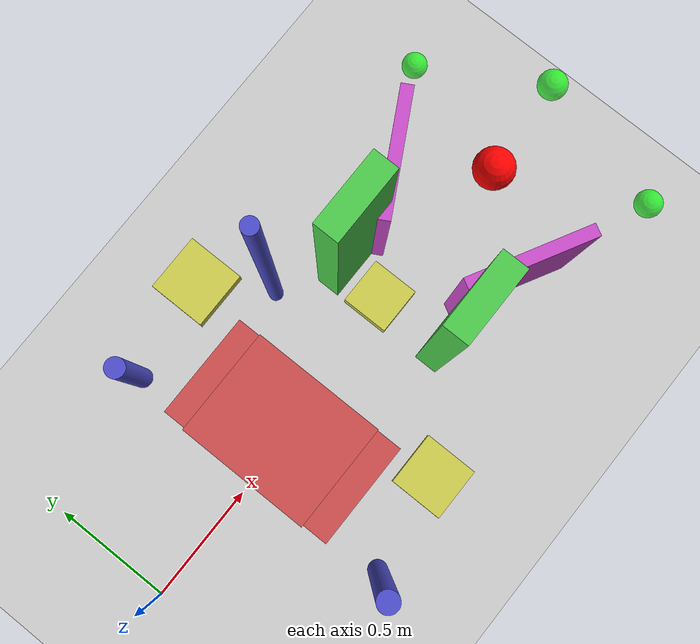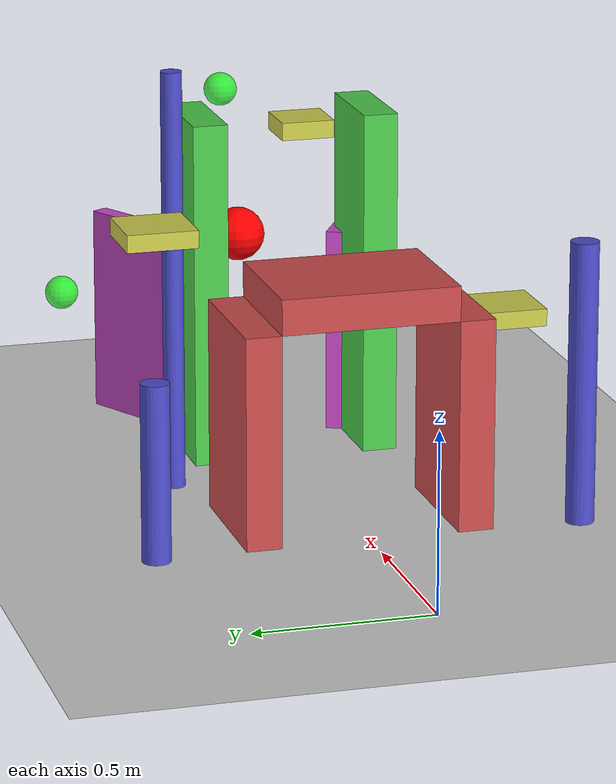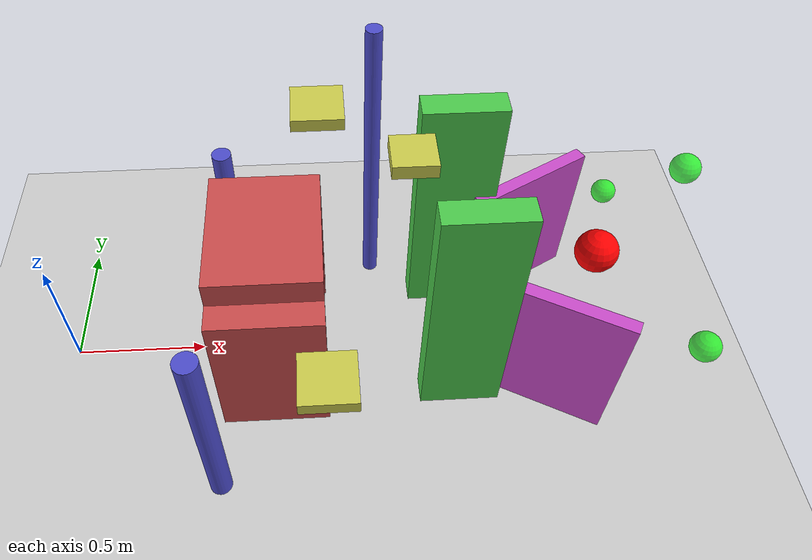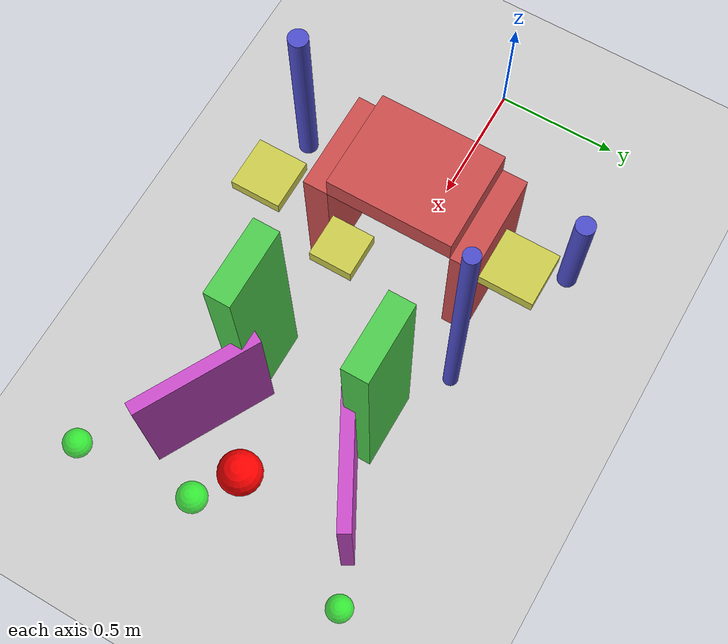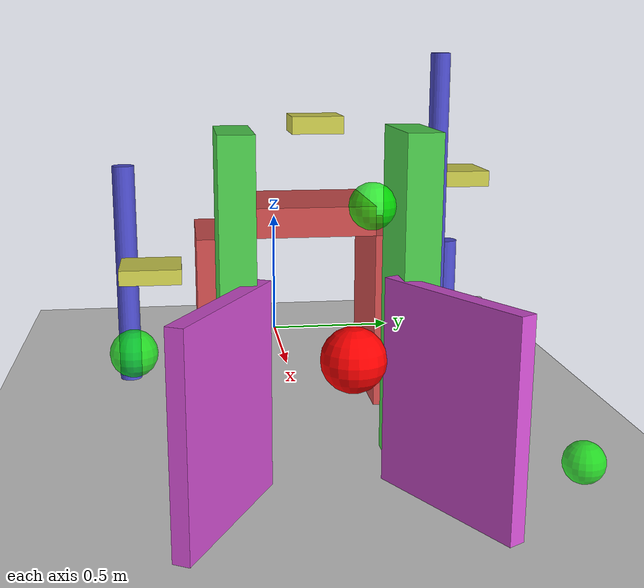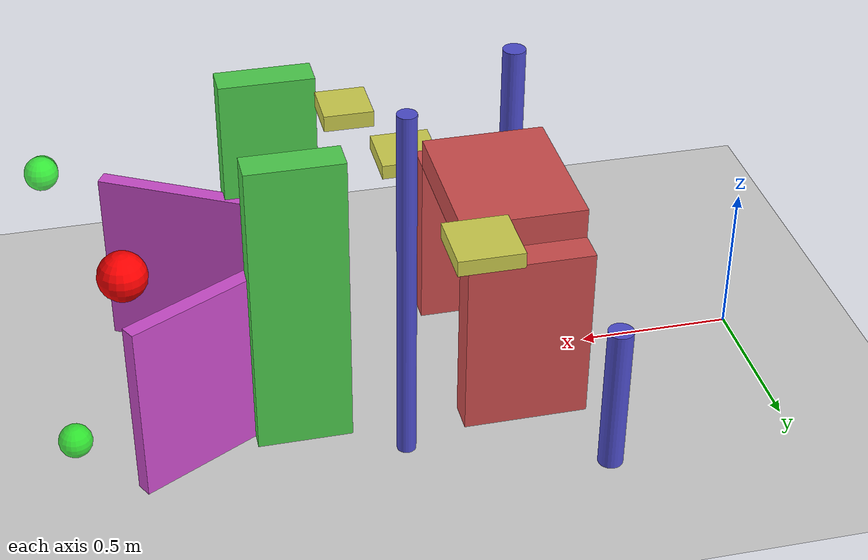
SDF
<?xml version="1.0" ?>
<sdf version="1.8">
  <world name="obstacle_course">

    <!-- Physics -->
    <physics name="1ms" type="ignored">
      <max_step_size>0.001</max_step_size>
      <real_time_factor>1.0</real_time_factor>
    </physics>

    <!-- Plugins -->
    <plugin filename="gz-sim-physics-system" name="gz::sim::systems::Physics"/>
    <plugin filename="gz-sim-user-commands-system" name="gz::sim::systems::UserCommands"/>
    <plugin filename="gz-sim-scene-broadcaster-system" name="gz::sim::systems::SceneBroadcaster"/>
    <plugin filename="gz-sim-contact-system" name="gz::sim::systems::Contact"/>

    <!-- Lighting -->
    <light type="directional" name="sun">
      <cast_shadows>true</cast_shadows>
      <pose>0 0 10 0 0 0</pose>
      <diffuse>0.8 0.8 0.8 1</diffuse>
      <specular>0.2 0.2 0.2 1</specular>
      <attenuation>
        <range>1000</range>
        <constant>0.9</constant>
        <linear>0.01</linear>
        <quadratic>0.001</quadratic>
      </attenuation>
      <direction>-0.5 0.1 -0.9</direction>
    </light>

    <!-- Ground Plane -->
    <model name="ground_plane">
      <static>true</static>
      <link name="link">
        <collision name="collision">
          <geometry>
            <plane>
              <normal>0 0 1</normal>
            </plane>
          </geometry>
        </collision>
        <visual name="visual">
          <geometry>
            <plane>
              <normal>0 0 1</normal>
              <size>100 100</size>
            </plane>
          </geometry>
          <material>
            <ambient>0.8 0.8 0.8 1</ambient>
            <diffuse>0.8 0.8 0.8 1</diffuse>
            <specular>0.8 0.8 0.8 1</specular>
          </material>
        </visual>
      </link>
    </model>

    <!-- Narrow Passage 1 - Low Height -->
    <model name="narrow_passage_low">
      <static>true</static>
      <pose>0.8 0 0 0 0 0</pose>
      <!-- Left Wall -->
      <link name="left_wall">
        <pose>0 0.3 0.3 0 0 0</pose>
        <collision name="collision">
          <geometry>
            <box>
              <size>0.4 0.1 0.6</size>
            </box>
          </geometry>
        </collision>
        <visual name="visual">
          <geometry>
            <box>
              <size>0.4 0.1 0.6</size>
            </box>
          </geometry>
          <material>
            <ambient>0.8 0.3 0.3 1</ambient>
            <diffuse>0.8 0.3 0.3 1</diffuse>
          </material>
        </visual>
      </link>
      <!-- Right Wall -->
      <link name="right_wall">
        <pose>0 -0.3 0.3 0 0 0</pose>
        <collision name="collision">
          <geometry>
            <box>
              <size>0.4 0.1 0.6</size>
            </box>
          </geometry>
        </collision>
        <visual name="visual">
          <geometry>
            <box>
              <size>0.4 0.1 0.6</size>
            </box>
          </geometry>
          <material>
            <ambient>0.8 0.3 0.3 1</ambient>
            <diffuse>0.8 0.3 0.3 1</diffuse>
          </material>
        </visual>
      </link>
      <!-- Top -->
      <link name="top">
        <pose>0 0 0.65 0 0 0</pose>
        <collision name="collision">
          <geometry>
            <box>
              <size>0.4 0.5 0.1</size>
            </box>
          </geometry>
        </collision>
        <visual name="visual">
          <geometry>
            <box>
              <size>0.4 0.5 0.1</size>
            </box>
          </geometry>
          <material>
            <ambient>0.8 0.3 0.3 1</ambient>
            <diffuse>0.8 0.3 0.3 1</diffuse>
          </material>
        </visual>
      </link>
    </model>

    <!-- Narrow Passage 2 - Medium Height -->
    <model name="narrow_passage_med">
      <static>true</static>
      <pose>1.5 0 0 0 0 0</pose>
      <!-- Left Wall -->
      <link name="left_wall">
        <pose>0 0.25 0.5 0 0 0</pose>
        <collision name="collision">
          <geometry>
            <box>
              <size>0.3 0.1 1.0</size>
            </box>
          </geometry>
        </collision>
        <visual name="visual">
          <geometry>
            <box>
              <size>0.3 0.1 1.0</size>
            </box>
          </geometry>
          <material>
            <ambient>0.3 0.8 0.3 1</ambient>
            <diffuse>0.3 0.8 0.3 1</diffuse>
          </material>
        </visual>
      </link>
      <!-- Right Wall -->
      <link name="right_wall">
        <pose>0 -0.25 0.5 0 0 0</pose>
        <collision name="collision">
          <geometry>
            <box>
              <size>0.3 0.1 1.0</size>
            </box>
          </geometry>
        </collision>
        <visual name="visual">
          <geometry>
            <box>
              <size>0.3 0.1 1.0</size>
            </box>
          </geometry>
          <material>
            <ambient>0.3 0.8 0.3 1</ambient>
            <diffuse>0.3 0.8 0.3 1</diffuse>
          </material>
        </visual>
      </link>
    </model>

    <!-- Hanging Obstacle at Different Heights -->
    <model name="hanging_obstacle_1">
      <static>true</static>
      <pose>1.0 0.5 0.8 0 0 0</pose>
      <link name="link">
        <collision name="collision">
          <geometry>
            <box>
              <size>0.2 0.2 0.05</size>
            </box>
          </geometry>
        </collision>
        <visual name="visual">
          <geometry>
            <box>
              <size>0.2 0.2 0.05</size>
            </box>
          </geometry>
          <material>
            <ambient>0.8 0.8 0.3 1</ambient>
            <diffuse>0.8 0.8 0.3 1</diffuse>
          </material>
        </visual>
      </link>
    </model>

    <model name="hanging_obstacle_2">
      <static>true</static>
      <pose>1.0 -0.5 0.5 0 0 0</pose>
      <link name="link">
        <collision name="collision">
          <geometry>
            <box>
              <size>0.2 0.2 0.05</size>
            </box>
          </geometry>
        </collision>
        <visual name="visual">
          <geometry>
            <box>
              <size>0.2 0.2 0.05</size>
            </box>
          </geometry>
          <material>
            <ambient>0.8 0.8 0.3 1</ambient>
            <diffuse>0.8 0.8 0.3 1</diffuse>
          </material>
        </visual>
      </link>
    </model>

    <model name="hanging_obstacle_3">
      <static>true</static>
      <pose>1.3 0 1.0 0 0 0</pose>
      <link name="link">
        <collision name="collision">
          <geometry>
            <box>
              <size>0.15 0.15 0.05</size>
            </box>
          </geometry>
        </collision>
        <visual name="visual">
          <geometry>
            <box>
              <size>0.15 0.15 0.05</size>
            </box>
          </geometry>
          <material>
            <ambient>0.8 0.8 0.3 1</ambient>
            <diffuse>0.8 0.8 0.3 1</diffuse>
          </material>
        </visual>
      </link>
    </model>

    <!-- Vertical Poles at Various Heights -->
    <model name="pole_1">
      <static>true</static>
      <pose>0.6 0.6 0.25 0 0 0</pose>
      <link name="link">
        <collision name="collision">
          <geometry>
            <cylinder>
              <radius>0.04</radius>
              <length>0.5</length>
            </cylinder>
          </geometry>
        </collision>
        <visual name="visual">
          <geometry>
            <cylinder>
              <radius>0.04</radius>
              <length>0.5</length>
            </cylinder>
          </geometry>
          <material>
            <ambient>0.3 0.3 0.8 1</ambient>
            <diffuse>0.3 0.3 0.8 1</diffuse>
          </material>
        </visual>
      </link>
    </model>

    <model name="pole_2">
      <static>true</static>
      <pose>0.6 -0.6 0.4 0 0 0</pose>
      <link name="link">
        <collision name="collision">
          <geometry>
            <cylinder>
              <radius>0.04</radius>
              <length>0.8</length>
            </cylinder>
          </geometry>
        </collision>
        <visual name="visual">
          <geometry>
            <cylinder>
              <radius>0.04</radius>
              <length>0.8</length>
            </cylinder>
          </geometry>
          <material>
            <ambient>0.3 0.3 0.8 1</ambient>
            <diffuse>0.3 0.3 0.8 1</diffuse>
          </material>
        </visual>
      </link>
    </model>

    <model name="pole_3">
      <static>true</static>
      <pose>1.2 0.4 0.6 0 0 0</pose>
      <link name="link">
        <collision name="collision">
          <geometry>
            <cylinder>
              <radius>0.03</radius>
              <length>1.2</length>
            </cylinder>
          </geometry>
        </collision>
        <visual name="visual">
          <geometry>
            <cylinder>
              <radius>0.03</radius>
              <length>1.2</length>
            </cylinder>
          </geometry>
          <material>
            <ambient>0.3 0.3 0.8 1</ambient>
            <diffuse>0.3 0.3 0.8 1</diffuse>
          </material>
        </visual>
      </link>
    </model>

    <!-- Angled Barriers -->
    <model name="angled_barrier_1">
      <static>true</static>
      <pose>1.8 0.3 0.3 0 0 0.5</pose>
      <link name="link">
        <collision name="collision">
          <geometry>
            <box>
              <size>0.5 0.05 0.6</size>
            </box>
          </geometry>
        </collision>
        <visual name="visual">
          <geometry>
            <box>
              <size>0.5 0.05 0.6</size>
            </box>
          </geometry>
          <material>
            <ambient>0.8 0.3 0.8 1</ambient>
            <diffuse>0.8 0.3 0.8 1</diffuse>
          </material>
        </visual>
      </link>
    </model>

    <model name="angled_barrier_2">
      <static>true</static>
      <pose>1.8 -0.3 0.3 0 0 -0.5</pose>
      <link name="link">
        <collision name="collision">
          <geometry>
            <box>
              <size>0.5 0.05 0.6</size>
            </box>
          </geometry>
        </collision>
        <visual name="visual">
          <geometry>
            <box>
              <size>0.5 0.05 0.6</size>
            </box>
          </geometry>
          <material>
            <ambient>0.8 0.3 0.8 1</ambient>
            <diffuse>0.8 0.3 0.8 1</diffuse>
          </material>
        </visual>
      </link>
    </model>

    <!-- Moving Target Sphere (for tracking) -->
    <model name="moving_target">
      <pose>2.0 0 0.5 0 0 0</pose>
      <link name="link">
        <collision name="collision">
          <geometry>
            <sphere>
              <radius>0.08</radius>
            </sphere>
          </geometry>
        </collision>
        <visual name="visual">
          <geometry>
            <sphere>
              <radius>0.08</radius>
            </sphere>
          </geometry>
          <material>
            <ambient>1 0 0 1</ambient>
            <diffuse>1 0 0 1</diffuse>
          </material>
        </visual>
        <inertial>
          <mass>0.3</mass>
          <inertia>
            <ixx>0.0005</ixx>
            <iyy>0.0005</iyy>
            <izz>0.0005</izz>
          </inertia>
        </inertial>
      </link>
    </model>

    <!-- Goal Markers -->
    <model name="goal_1">
      <static>true</static>
      <pose>2.2 0.5 0.3 0 0 0</pose>
      <link name="link">
        <visual name="visual">
          <geometry>
            <sphere>
              <radius>0.05</radius>
            </sphere>
          </geometry>
          <material>
            <ambient>0 1 0 0.7</ambient>
            <diffuse>0 1 0 0.7</diffuse>
          </material>
        </visual>
      </link>
    </model>

    <model name="goal_2">
      <static>true</static>
      <pose>2.2 -0.5 0.6 0 0 0</pose>
      <link name="link">
        <visual name="visual">
          <geometry>
            <sphere>
              <radius>0.05</radius>
            </sphere>
          </geometry>
          <material>
            <ambient>0 1 0 0.7</ambient>
            <diffuse>0 1 0 0.7</diffuse>
          </material>
        </visual>
      </link>
    </model>

    <model name="goal_3">
      <static>true</static>
      <pose>2.2 0 0.9 0 0 0</pose>
      <link name="link">
        <visual name="visual">
          <geometry>
            <sphere>
              <radius>0.05</radius>
            </sphere>
          </geometry>
          <material>
            <ambient>0 1 0 0.7</ambient>
            <diffuse>0 1 0 0.7</diffuse>
          </material>
        </visual>
      </link>
    </model>

  </world>
</sdf>
